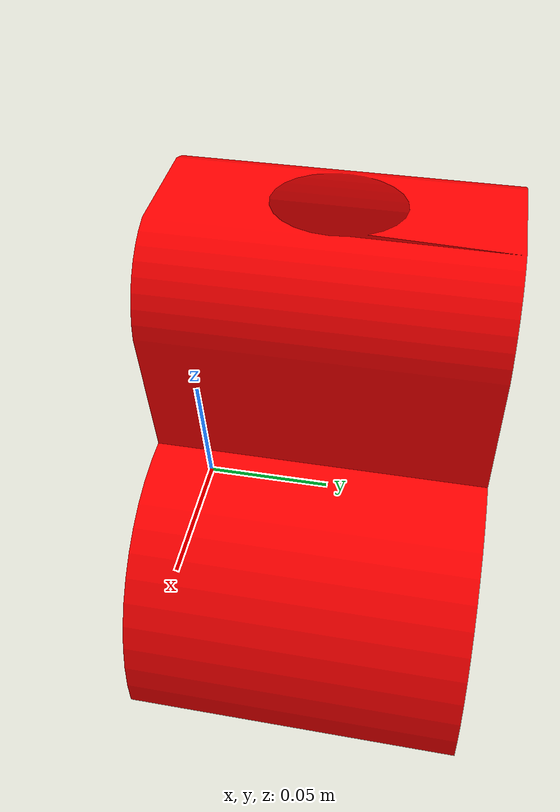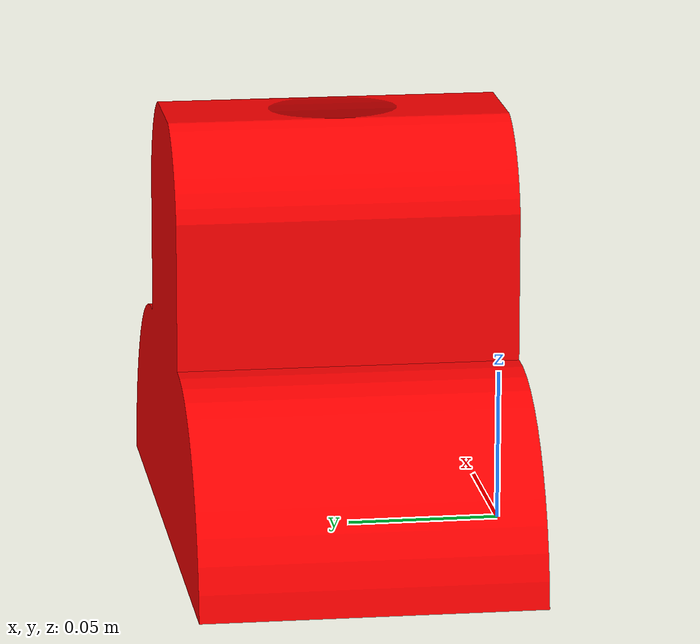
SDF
<?xml version='1.0'?>
<sdf version='1.6'>
  <model name="obstacle_1">

	  <static>true</static>

    <link name ='obs'>
      <pose>0 0 0 0 0 0</pose>
      <inertial>
        <mass>45</mass>
      </inertial>
      <collision name ='obs_collision'>
        <geometry>
          <mesh>
            <uri>model://mybot_gazebo/models/obstacle_1/meshes/obstacle_1.dae</uri>
				  </mesh>
        </geometry>
      </collision>
      <visual name='obs_visual'>
        <geometry>
  			 	<mesh>
 					  <uri>model://mybot_gazebo/models/obstacle_1/meshes/obstacle_1.dae</uri>
 				  </mesh>
        </geometry>
          <material>
            <ambient>1 0 0 1</ambient>
            <diffuse>1 0 0 1</diffuse>
            <specular>1 0 0 1</specular>
            <emissive>1 0 0 1</emissive>
          </material>
       </visual>
     </link>
  </model>
</sdf>
